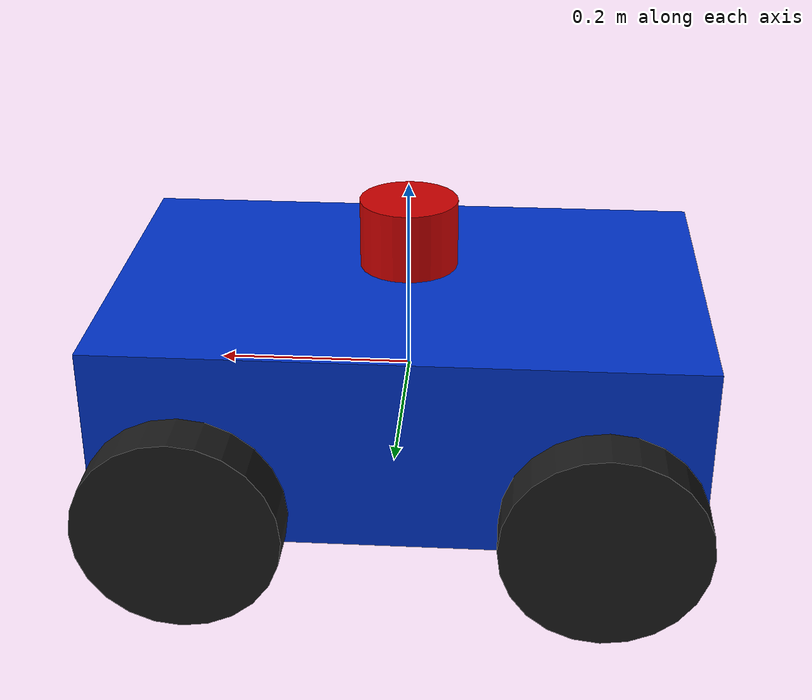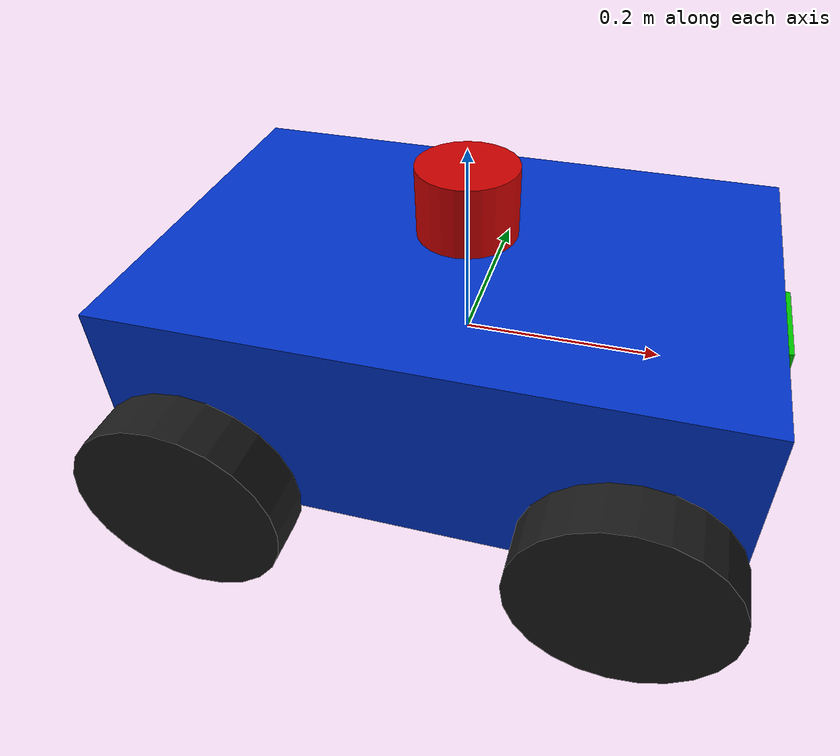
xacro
<?xml version="1.0"?>
<robot name="exploration_rover" xmlns:xacro="http://www.ros.org/wiki/xacro">

  <!-- Properties -->
  <xacro:property name="wheel_radius" value="0.1"/>
  <xacro:property name="wheel_width" value="0.05"/>
  <xacro:property name="wheel_mass" value="0.5"/>
  <xacro:property name="base_width" value="0.4"/>
  <xacro:property name="base_length" value="0.6"/>
  <xacro:property name="base_height" value="0.2"/>

  <!-- Base Link -->
  <link name="base_link">
    <visual>
      <geometry>
        <box size="${base_length} ${base_width} ${base_height}"/>
      </geometry>
      <material name="blue">
        <color rgba="0 0.2 0.8 1"/>
      </material>
    </visual>
    <collision>
      <geometry>
        <box size="${base_length} ${base_width} ${base_height}"/>
      </geometry>
    </collision>
    <inertial>
      <mass value="15.0"/>
      <inertia ixx="0.5" ixy="0.0" ixz="0.0" iyy="0.7" iyz="0.0" izz="1.0"/>
    </inertial>
  </link>

  <gazebo reference="base_link">
    <material>Gazebo/Blue</material>
  </gazebo>

  <!-- Wheel Macro -->
  <xacro:macro name="wheel" params="prefix suffix x_pos y_pos">
    <link name="${prefix}_${suffix}_wheel">
      <visual>
        <geometry>
          <cylinder radius="${wheel_radius}" length="${wheel_width}"/>
        </geometry>
        <origin xyz="0 0 0" rpy="1.5708 0 0"/>
        <material name="black">
          <color rgba="0.1 0.1 0.1 1"/>
        </material>
      </visual>
      <collision>
        <geometry>
          <cylinder radius="${wheel_radius}" length="${wheel_width}"/>
        </geometry>
        <origin xyz="0 0 0" rpy="1.5708 0 0"/>
      </collision>
      <inertial>
        <mass value="${wheel_mass}"/>
        <inertia ixx="0.002" ixy="0.0" ixz="0.0" iyy="0.002" iyz="0.0" izz="0.002"/>
      </inertial>
    </link>

    <joint name="${prefix}_${suffix}_wheel_joint" type="continuous">
      <parent link="base_link"/>
      <child link="${prefix}_${suffix}_wheel"/>
      <origin xyz="${x_pos} ${y_pos} -0.05" rpy="0 0 0"/>
      <axis xyz="0 1 0"/>
    </joint>

    <gazebo reference="${prefix}_${suffix}_wheel">
      <material>Gazebo/Black</material>
      <mu1>1.0</mu1>
      <mu2>1.0</mu2>
      <kp>1000000.0</kp>
      <kd>100.0</kd>
    </gazebo>
  </xacro:macro>

  <!-- Create 4 wheels -->
  <xacro:wheel prefix="front" suffix="left" x_pos="0.2" y_pos="0.25"/>
  <xacro:wheel prefix="front" suffix="right" x_pos="0.2" y_pos="-0.25"/>
  <xacro:wheel prefix="back" suffix="left" x_pos="-0.2" y_pos="0.25"/>
  <xacro:wheel prefix="back" suffix="right" x_pos="-0.2" y_pos="-0.25"/>

  <!-- LiDAR Mount -->
  <link name="lidar_link">
    <visual>
      <geometry>
        <cylinder radius="0.05" length="0.07"/>
      </geometry>
      <material name="red">
        <color rgba="0.8 0 0 1"/>
      </material>
    </visual>
    <collision>
      <geometry>
        <cylinder radius="0.05" length="0.07"/>
      </geometry>
    </collision>
    <inertial>
      <mass value="0.3"/>
      <inertia ixx="0.001" ixy="0.0" ixz="0.0" iyy="0.001" iyz="0.0" izz="0.001"/>
    </inertial>
  </link>

  <joint name="lidar_joint" type="fixed">
    <parent link="base_link"/>
    <child link="lidar_link"/>
    <origin xyz="0 0 0.15" rpy="0 0 0"/>
  </joint>

  <gazebo reference="lidar_link">
    <material>Gazebo/Red</material>
  </gazebo>

  <!-- Camera Mount -->
  <link name="camera_link">
    <visual>
      <geometry>
        <box size="0.03 0.1 0.03"/>
      </geometry>
      <material name="green">
        <color rgba="0 0.8 0 1"/>
      </material>
    </visual>
    <collision>
      <geometry>
        <box size="0.03 0.1 0.03"/>
      </geometry>
    </collision>
    <inertial>
      <mass value="0.1"/>
      <inertia ixx="0.0001" ixy="0.0" ixz="0.0" iyy="0.0001" iyz="0.0" izz="0.0001"/>
    </inertial>
  </link>

  <joint name="camera_joint" type="fixed">
    <parent link="base_link"/>
    <child link="camera_link"/>
    <origin xyz="0.3 0 0.05" rpy="0 0 0"/>
  </joint>

  <gazebo reference="camera_link">
    <material>Gazebo/Green</material>
  </gazebo>

  <!-- IMU Link -->
  <link name="imu_link">
    <inertial>
      <mass value="0.01"/>
      <inertia ixx="0.0001" ixy="0" ixz="0" iyy="0.0001" iyz="0" izz="0.0001"/>
    </inertial>
  </link>

  <joint name="imu_joint" type="fixed">
    <parent link="base_link"/>
    <child link="imu_link"/>
    <origin xyz="0 0 0.05" rpy="0 0 0"/>
  </joint>

  <!-- Differential Drive Controller -->
  <gazebo>
    <plugin name="differential_drive_controller" filename="libgazebo_ros_diff_drive.so">
      <update_rate>50</update_rate>
      <left_joint>front_left_wheel_joint</left_joint>
      <right_joint>front_right_wheel_joint</right_joint>
      <wheel_separation>0.5</wheel_separation>
      <wheel_diameter>0.2</wheel_diameter>
      <max_wheel_torque>30</max_wheel_torque>
      <max_wheel_acceleration>2.0</max_wheel_acceleration>
      <command_topic>cmd_vel</command_topic>
      <publish_odom>true</publish_odom>
      <publish_odom_tf>true</publish_odom_tf>
      <publish_wheel_tf>true</publish_wheel_tf>
      <odometry_topic>odom</odometry_topic>
      <odometry_frame>odom</odometry_frame>
      <robot_base_frame>base_link</robot_base_frame>
    </plugin>
  </gazebo>

  <!-- 2D LiDAR Sensor -->
  <gazebo reference="lidar_link">
    <sensor type="ray" name="lidar_sensor">
      <pose>0 0 0 0 0 0</pose>
      <visualize>true</visualize>
      <update_rate>10</update_rate>
      <ray>
        <scan>
          <horizontal>
            <samples>360</samples>
            <resolution>1</resolution>
            <min_angle>-3.14159</min_angle>
            <max_angle>3.14159</max_angle>
          </horizontal>
        </scan>
        <range>
          <min>0.2</min>
          <max>30.0</max>
          <resolution>0.01</resolution>
        </range>
        <noise>
          <type>gaussian</type>
          <mean>0.0</mean>
          <stddev>0.01</stddev>
        </noise>
      </ray>
      <plugin name="gazebo_ros_lidar" filename="libgazebo_ros_ray_sensor.so">
        <ros>
          <remapping>~/out:=scan</remapping>
        </ros>
        <output_type>sensor_msgs/LaserScan</output_type>
        <frame_name>lidar_link</frame_name>
      </plugin>
    </sensor>
  </gazebo>

  <!-- Camera Sensor -->
  <gazebo reference="camera_link">
    <sensor type="camera" name="camera_sensor">
      <update_rate>30.0</update_rate>
      <camera name="front_camera">
        <horizontal_fov>1.3962634</horizontal_fov>
        <image>
          <width>640</width>
          <height>480</height>
          <format>R8G8B8</format>
        </image>
        <clip>
          <near>0.02</near>
          <far>300</far>
        </clip>
        <noise>
          <type>gaussian</type>
          <mean>0.0</mean>
          <stddev>0.007</stddev>
        </noise>
      </camera>
      <plugin name="camera_controller" filename="libgazebo_ros_camera.so">
        <ros>
          <remapping>~/image_raw:=camera/image_raw</remapping>
          <remapping>~/camera_info:=camera/camera_info</remapping>
        </ros>
        <camera_name>front_camera</camera_name>
        <frame_name>camera_link</frame_name>
      </plugin>
    </sensor>
  </gazebo>

  <!-- IMU Sensor -->
  <gazebo reference="imu_link">
    <sensor name="imu_sensor" type="imu">
      <always_on>true</always_on>
      <update_rate>100</update_rate>
      <plugin filename="libgazebo_ros_imu_sensor.so" name="imu_plugin">
        <ros>
          <remapping>~/out:=imu/data</remapping>
        </ros>
        <initial_orientation_as_reference>false</initial_orientation_as_reference>
        <frame_name>imu_link</frame_name>
      </plugin>
    </sensor>
  </gazebo>

  <!-- GPS Sensor -->
  <gazebo>
    <plugin name="gps_controller" filename="libgazebo_ros_gps_sensor.so">
      <ros>
        <remapping>~/out:=gps/fix</remapping>
      </ros>
      <update_rate>4.0</update_rate>
      <frame_name>base_link</frame_name>
    </plugin>
  </gazebo>

</robot>
